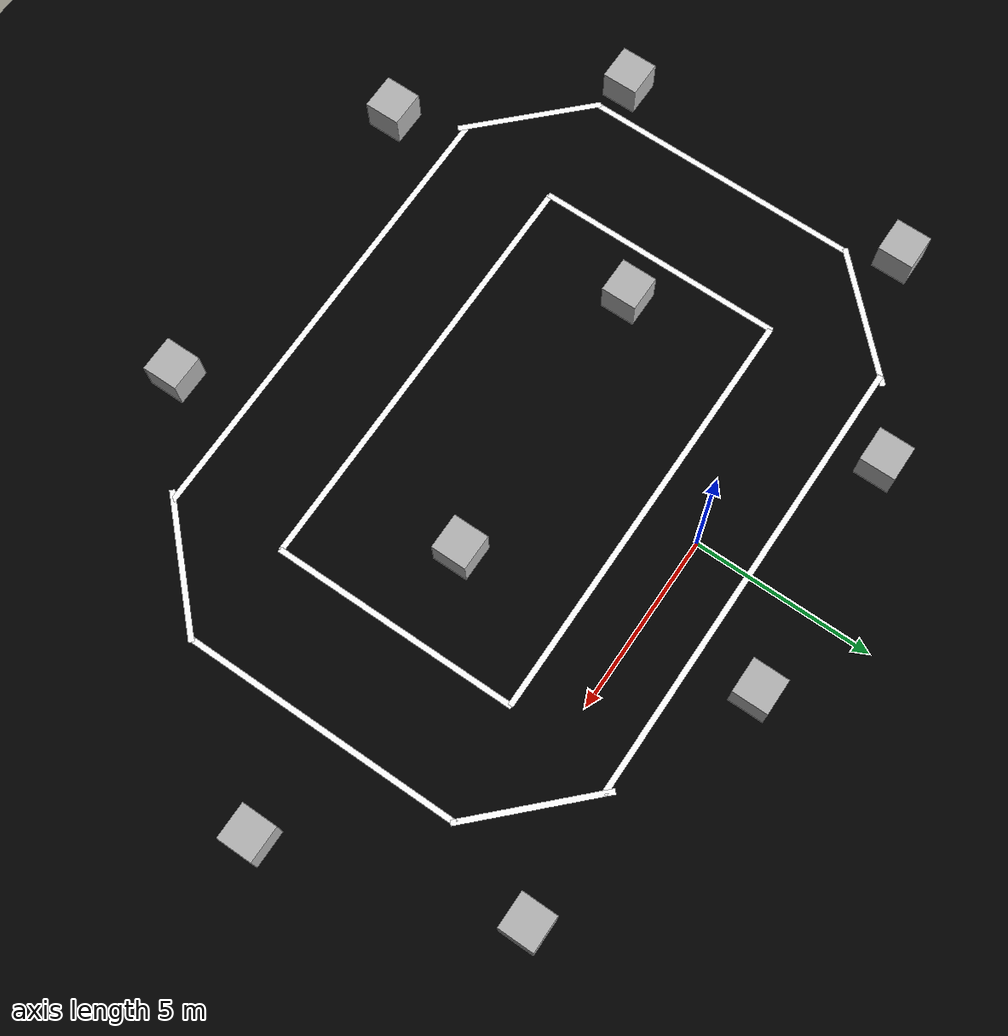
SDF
<sdf version="1.9">
 <world name="tinykarts_world">
  <physics name="1ms" type="ignored">
   <max_step_size>0.001</max_step_size>
   <real_time_factor>1.0</real_time_factor>
   <real_time_update_rate>1000</real_time_update_rate>
  </physics>
  <plugin name="ignition::gazebo::systems::Physics" filename="ignition-gazebo-physics-system"/>
  <plugin name="ignition::gazebo::systems::Sensors" filename="ignition-gazebo-sensors-system">
   <render_engine>ogre2</render_engine>
  </plugin>
  <plugin name="ignition::gazebo::systems::UserCommands" filename="ignition-gazebo-user-commands-system"/>
  <plugin name="ignition::gazebo::systems::SceneBroadcaster" filename="ignition-gazebo-scene-broadcaster-system"/>
  <plugin name="ignition::gazebo::systems::Contact" filename="ignition-gazebo-contact-system"/>
  <plugin name="ignition::gazebo::systems::Imu" filename="libignition-gazebo-imu-system.so"/>
  <gravity>0 0 -9.8</gravity>
  <magnetic_field>5.5645e-6 22.8758e-6 -42.3884e-6</magnetic_field>
  <atmosphere type="adiabatic"/>
  <scene><ambient>0.4 0.4 0.4 1.0</ambient><background>.7 .7 .7 1</background><shadows>true</shadows></scene>
  <model name="ground_plane">
   <static>1</static>
   <link name="link">
    <collision name="collision">
     <geometry><plane><normal>0 0 1</normal><size>100 100</size></plane></geometry>
    </collision>
    <visual name="visual">
     <geometry><plane><normal>0 0 1</normal><size>100 100</size></plane></geometry>
     <material>
      <ambient>0.8 0.8 0.8 1</ambient>
      <diffuse>0 0 0 1</diffuse>
      <specular>0.8 0.8 0.8 1</specular>
     </material>
    </visual>
    <inertial>
     <mass>1</mass>
     <inertia><ixx>1</ixx><ixy>0</ixy><ixz>0</ixz><iyy>1</iyy><iyz>0</iyz><izz>1</izz></inertia>
    </inertial>
   </link>
  </model>
  <model name="white_line_l1">
   <static>1</static>
   <link name="link_ground">
    <pose>0 1.524 0.01 0 -0 1.5708</pose>
    <visual name="visual_ground">
     <cast_shadows>false</cast_shadows>
     <geometry><plane><normal>0 0 1</normal><size>0.1524 13</size></plane></geometry>
     <material>
      <ambient>1.0 1.0 1.0 1.0</ambient>
      <diffuse>1.0 1.0 1.0 1.0</diffuse>
      <specular>1.0 1.0 1.0 1.0</specular>
      <emissive>1.0 1.0 1.0 1.0</emissive>
     </material>
    </visual>
    <inertial>
     <mass>1</mass>
     <inertia><ixx>1</ixx><ixy>0</ixy><ixz>0</ixz><iyy>1</iyy><iyz>0</iyz><izz>1</izz></inertia>
    </inertial>
   </link>
  </model>
  <model name="white_line_r1">
   <static>1</static>
   <link name="link_ground">
    <pose>0 -1.524 0.01 0 -0 1.5708</pose>
    <visual name="visual_ground">
     <cast_shadows>false</cast_shadows>
     <geometry><plane><normal>0 0 1</normal><size>0.1524 12</size></plane></geometry>
     <material>
      <ambient>1.0 1.0 1.0 1.0</ambient>
      <diffuse>1.0 1.0 1.0 1.0</diffuse>
      <specular>1.0 1.0 1.0 1.0</specular>
      <emissive>1.0 1.0 1.0 1.0</emissive>
     </material>
    </visual>
    <inertial>
     <mass>1</mass>
     <inertia><ixx>1</ixx><ixy>0</ixy><ixz>0</ixz><iyy>1</iyy><iyz>0</iyz><izz>1</izz></inertia>
    </inertial>
   </link>
  </model>
  <model name="white_line_r2">
   <static>1</static>
   <link name="link_ground">
    <pose>0 -11.524 0.01 0 -0 1.5708</pose>
    <visual name="visual_ground">
     <cast_shadows>false</cast_shadows>
     <geometry><plane><normal>0 0 1</normal><size>0.1524 13</size></plane></geometry>
     <material>
      <ambient>1.0 1.0 1.0 1.0</ambient>
      <diffuse>1.0 1.0 1.0 1.0</diffuse>
      <specular>1.0 1.0 1.0 1.0</specular>
      <emissive>1.0 1.0 1.0 1.0</emissive>
     </material>
    </visual>
    <inertial>
     <mass>1</mass>
     <inertia><ixx>1</ixx><ixy>0</ixy><ixz>0</ixz><iyy>1</iyy><iyz>0</iyz><izz>1</izz></inertia>
    </inertial>
   </link>
  </model>
  <model name="white_line_l2">
   <static>1</static>
   <link name="link_ground">
    <pose>0 -8.476 0.01 0 -0 1.5708</pose>
    <visual name="visual_ground">
     <cast_shadows>false</cast_shadows>
     <geometry><plane><normal>0 0 1</normal><size>0.1524 12</size></plane></geometry>
     <material>
      <ambient>1.0 1.0 1.0 1.0</ambient>
      <diffuse>1.0 1.0 1.0 1.0</diffuse>
      <specular>1.0 1.0 1.0 1.0</specular>
      <emissive>1.0 1.0 1.0 1.0</emissive>
     </material>
    </visual>
    <inertial>
     <mass>1</mass>
     <inertia><ixx>1</ixx><ixy>0</ixy><ixz>0</ixz><iyy>1</iyy><iyz>0</iyz><izz>1</izz></inertia>
    </inertial>
   </link>
  </model>
  <model name="white_line_t1">
   <static>1</static>
   <link name="link_ground">
    <pose>6 -5 0.01 0 -0 0</pose>
    <visual name="visual_ground">
     <cast_shadows>false</cast_shadows>
     <geometry><plane><normal>0 0 1</normal><size>0.1524 7.048</size></plane></geometry>
     <material>
      <ambient>1.0 1.0 1.0 1.0</ambient>
      <diffuse>1.0 1.0 1.0 1.0</diffuse>
      <specular>1.0 1.0 1.0 1.0</specular>
      <emissive>1.0 1.0 1.0 1.0</emissive>
     </material>
    </visual>
    <inertial>
     <mass>1</mass>
     <inertia><ixx>1</ixx><ixy>0</ixy><ixz>0</ixz><iyy>1</iyy><iyz>0</iyz><izz>1</izz></inertia>
    </inertial>
   </link>
  </model>
  <model name="white_line_t2">
   <static>1</static>
   <link name="link_ground">
    <pose>9.048 -5 0.01 0 -0 0</pose>
    <visual name="visual_ground">
     <cast_shadows>false</cast_shadows>
     <geometry><plane><normal>0 0 1</normal><size>0.1524 8</size></plane></geometry>
     <material>
      <ambient>1.0 1.0 1.0 1.0</ambient>
      <diffuse>1.0 1.0 1.0 1.0</diffuse>
      <specular>1.0 1.0 1.0 1.0</specular>
      <emissive>1.0 1.0 1.0 1.0</emissive>
     </material>
    </visual>
    <inertial>
     <mass>1</mass>
     <inertia><ixx>1</ixx><ixy>0</ixy><ixz>0</ixz><iyy>1</iyy><iyz>0</iyz><izz>1</izz></inertia>
    </inertial>
   </link>
  </model>
  <model name="white_line_t3">
   <static>1</static>
   <link name="link_ground">
    <pose>-6 -5 0.01 0 -0 0</pose>
    <visual name="visual_ground">
     <cast_shadows>false</cast_shadows>
     <geometry><plane><normal>0 0 1</normal><size>0.1524 7.048</size></plane></geometry>
     <material>
      <ambient>1.0 1.0 1.0 1.0</ambient>
      <diffuse>1.0 1.0 1.0 1.0</diffuse>
      <specular>1.0 1.0 1.0 1.0</specular>
      <emissive>1.0 1.0 1.0 1.0</emissive>
     </material>
    </visual>
    <inertial>
     <mass>1</mass>
     <inertia><ixx>1</ixx><ixy>0</ixy><ixz>0</ixz><iyy>1</iyy><iyz>0</iyz><izz>1</izz></inertia>
    </inertial>
   </link>
  </model>
  <model name="white_line_t4">
   <static>1</static>
   <link name="link_ground">
    <pose>-9.048 -5 0.01 0 -0 0</pose>
    <visual name="visual_ground">
     <cast_shadows>false</cast_shadows>
     <geometry><plane><normal>0 0 1</normal><size>0.1524 8</size></plane></geometry>
     <material>
      <ambient>1.0 1.0 1.0 1.0</ambient>
      <diffuse>1.0 1.0 1.0 1.0</diffuse>
      <specular>1.0 1.0 1.0 1.0</specular>
      <emissive>1.0 1.0 1.0 1.0</emissive>
     </material>
    </visual>
    <inertial>
     <mass>1</mass>
     <inertia><ixx>1</ixx><ixy>0</ixy><ixz>0</ixz><iyy>1</iyy><iyz>0</iyz><izz>1</izz></inertia>
    </inertial>
   </link>
  </model>
  <model name="white_line_d1">
   <static>1</static>
   <link name="link_ground">
    <pose>7.7 0.3 0.01 0 -0 0.785398</pose>
    <visual name="visual_ground">
     <cast_shadows>false</cast_shadows>
     <geometry><plane><normal>0 0 1</normal><size>0.1524 4</size></plane></geometry>
     <material>
      <ambient>1.0 1.0 1.0 1.0</ambient>
      <diffuse>1.0 1.0 1.0 1.0</diffuse>
      <specular>1.0 1.0 1.0 1.0</specular>
      <emissive>1.0 1.0 1.0 1.0</emissive>
     </material>
    </visual>
    <inertial>
     <mass>1</mass>
     <inertia><ixx>1</ixx><ixy>0</ixy><ixz>0</ixz><iyy>1</iyy><iyz>0</iyz><izz>1</izz></inertia>
    </inertial>
   </link>
  </model>
  <model name="white_line_d2">
   <static>1</static>
   <link name="link_ground">
    <pose>7.7 -10.3 0.01 0 0 -0.785398</pose>
    <visual name="visual_ground">
     <cast_shadows>false</cast_shadows>
     <geometry><plane><normal>0 0 1</normal><size>0.1524 4</size></plane></geometry>
     <material>
      <ambient>1.0 1.0 1.0 1.0</ambient>
      <diffuse>1.0 1.0 1.0 1.0</diffuse>
      <specular>1.0 1.0 1.0 1.0</specular>
      <emissive>1.0 1.0 1.0 1.0</emissive>
     </material>
    </visual>
    <inertial>
     <mass>1</mass>
     <inertia><ixx>1</ixx><ixy>0</ixy><ixz>0</ixz><iyy>1</iyy><iyz>0</iyz><izz>1</izz></inertia>
    </inertial>
   </link>
  </model>
  <model name="white_line_d3">
   <static>1</static>
   <link name="link_ground">
    <pose>-7.7 0.3 0.01 0 0 -0.785398</pose>
    <visual name="visual_ground">
     <cast_shadows>false</cast_shadows>
     <geometry><plane><normal>0 0 1</normal><size>0.1524 4</size></plane></geometry>
     <material>
      <ambient>1.0 1.0 1.0 1.0</ambient>
      <diffuse>1.0 1.0 1.0 1.0</diffuse>
      <specular>1.0 1.0 1.0 1.0</specular>
      <emissive>1.0 1.0 1.0 1.0</emissive>
     </material>
    </visual>
    <inertial>
     <mass>1</mass>
     <inertia><ixx>1</ixx><ixy>0</ixy><ixz>0</ixz><iyy>1</iyy><iyz>0</iyz><izz>1</izz></inertia>
    </inertial>
   </link>
  </model>
  <model name="white_line_d4">
   <static>1</static>
   <link name="link_ground">
    <pose>-7.7 -10.3 0.01 0 -0 0.785398</pose>
    <visual name="visual_ground">
     <cast_shadows>false</cast_shadows>
     <geometry><plane><normal>0 0 1</normal><size>0.1524 4</size></plane></geometry>
     <material>
      <ambient>1.0 1.0 1.0 1.0</ambient>
      <diffuse>1.0 1.0 1.0 1.0</diffuse>
      <specular>1.0 1.0 1.0 1.0</specular>
      <emissive>1.0 1.0 1.0 1.0</emissive>
     </material>
    </visual>
    <inertial>
     <mass>1</mass>
     <inertia><ixx>1</ixx><ixy>0</ixy><ixz>0</ixz><iyy>1</iyy><iyz>0</iyz><izz>1</izz></inertia>
    </inertial>
   </link>
  </model>
  <model name="box">
   <pose>3.52121 -4.71769 0.5 0 -0 -0</pose>
   <link name="box_link">
    <inertial>
     <inertia><ixx>0.16666</ixx><ixy>0</ixy><ixz>0</ixz><iyy>0.16666</iyy><iyz>0</iyz><izz>0.16666</izz></inertia>
     <mass>1</mass>
    </inertial>
    <collision name="box_collision"><geometry><box><size>1 1 1</size></box></geometry></collision>
    <visual name="box_visual">
     <geometry><box><size>1 1 1</size></box></geometry>
     <material>
      <ambient>0.3 0.3 0.3 1</ambient>
      <diffuse>0.7 0.7 0.7 1</diffuse>
      <specular>1 1 1 1</specular>
     </material>
    </visual>
   </link>
   <static>0</static>
  </model>
  <model name="box_0">
   <pose>12.0049 -4.76662 0.5 0 -0 -0</pose>
   <link name="box_link">
    <inertial>
     <inertia><ixx>0.16666</ixx><ixy>0</ixy><ixz>0</ixz><iyy>0.16666</iyy><iyz>0</iyz><izz>0.16666</izz></inertia>
     <mass>1</mass>
    </inertial>
    <collision name="box_collision"><geometry><box><size>1 1 1</size></box></geometry></collision>
    <visual name="box_visual">
     <geometry><box><size>1 1 1</size></box></geometry>
     <material>
      <ambient>0.3 0.3 0.3 1</ambient>
      <diffuse>0.7 0.7 0.7 1</diffuse>
      <specular>1 1 1 1</specular>
     </material>
    </visual>
   </link>
   <static>0</static>
  </model>
  <model name="box_1">
   <pose>2.40836 3.23497 0.5 0 -0 -0</pose>
   <link name="box_link">
    <inertial>
     <inertia><ixx>0.16666</ixx><ixy>0</ixy><ixz>0</ixz><iyy>0.16666</iyy><iyz>0</iyz><izz>0.16666</izz></inertia>
     <mass>1</mass>
    </inertial>
    <collision name="box_collision"><geometry><box><size>1 1 1</size></box></geometry></collision>
    <visual name="box_visual">
     <geometry><box><size>1 1 1</size></box></geometry>
     <material>
      <ambient>0.3 0.3 0.3 1</ambient>
      <diffuse>0.7 0.7 0.7 1</diffuse>
      <specular>1 1 1 1</specular>
     </material>
    </visual>
   </link>
   <static>0</static>
  </model>
  <model name="box_2">
   <pose>3.78202 -13.4626 0.5 0 -0 -0</pose>
   <link name="box_link">
    <inertial>
     <inertia><ixx>0.16666</ixx><ixy>0</ixy><ixz>0</ixz><iyy>0.16666</iyy><iyz>0</iyz><izz>0.16666</izz></inertia>
     <mass>1</mass>
    </inertial>
    <collision name="box_collision"><geometry><box><size>1 1 1</size></box></geometry></collision>
    <visual name="box_visual">
     <geometry><box><size>1 1 1</size></box></geometry>
     <material>
      <ambient>0.3 0.3 0.3 1</ambient>
      <diffuse>0.7 0.7 0.7 1</diffuse>
      <specular>1 1 1 1</specular>
     </material>
    </visual>
   </link>
   <static>0</static>
  </model>
  <model name="box_3">
   <pose>9.99887 1.71717 0.5 0 -0 -0</pose>
   <link name="box_link">
    <inertial>
     <inertia><ixx>0.16666</ixx><ixy>0</ixy><ixz>0</ixz><iyy>0.16666</iyy><iyz>0</iyz><izz>0.16666</izz></inertia>
     <mass>1</mass>
    </inertial>
    <collision name="box_collision"><geometry><box><size>1 1 1</size></box></geometry></collision>
    <visual name="box_visual">
     <geometry><box><size>1 1 1</size></box></geometry>
     <material>
      <ambient>0.3 0.3 0.3 1</ambient>
      <diffuse>0.7 0.7 0.7 1</diffuse>
      <specular>1 1 1 1</specular>
     </material>
    </visual>
   </link>
   <static>0</static>
  </model>
  <model name="box_4">
   <pose>-4.3426 2.75864 0.5 0 -0 -0</pose>
   <link name="box_link">
    <inertial>
     <inertia><ixx>0.16666</ixx><ixy>0</ixy><ixz>0</ixz><iyy>0.16666</iyy><iyz>0</iyz><izz>0.16666</izz></inertia>
     <mass>1</mass>
    </inertial>
    <collision name="box_collision"><geometry><box><size>1 1 1</size></box></geometry></collision>
    <visual name="box_visual">
     <geometry><box><size>1 1 1</size></box></geometry>
     <material>
      <ambient>0.3 0.3 0.3 1</ambient>
      <diffuse>0.7 0.7 0.7 1</diffuse>
      <specular>1 1 1 1</specular>
     </material>
    </visual>
   </link>
   <static>0</static>
  </model>
  <model name="box_5">
   <pose>-4.59392 -5.08695 0.5 0 -0 -0</pose>
   <link name="box_link">
    <inertial>
     <inertia><ixx>0.16666</ixx><ixy>0</ixy><ixz>0</ixz><iyy>0.16666</iyy><iyz>0</iyz><izz>0.16666</izz></inertia>
     <mass>1</mass>
    </inertial>
    <collision name="box_collision"><geometry><box><size>1 1 1</size></box></geometry></collision>
    <visual name="box_visual">
     <geometry><box><size>1 1 1</size></box></geometry>
     <material>
      <ambient>0.3 0.3 0.3 1</ambient>
      <diffuse>0.7 0.7 0.7 1</diffuse>
      <specular>1 1 1 1</specular>
     </material>
    </visual>
   </link>
   <static>0</static>
  </model>
  <model name="box_6">
   <pose>-9.6029 0.201215 0.5 0 -0 -0</pose>
   <link name="box_link">
    <inertial>
     <inertia><ixx>0.16666</ixx><ixy>0</ixy><ixz>0</ixz><iyy>0.16666</iyy><iyz>0</iyz><izz>0.16666</izz></inertia>
     <mass>1</mass>
    </inertial>
    <collision name="box_collision"><geometry><box><size>1 1 1</size></box></geometry></collision>
    <visual name="box_visual">
     <geometry><box><size>1 1 1</size></box></geometry>
     <material>
      <ambient>0.3 0.3 0.3 1</ambient>
      <diffuse>0.7 0.7 0.7 1</diffuse>
      <specular>1 1 1 1</specular>
     </material>
    </visual>
   </link>
   <static>0</static>
  </model>
  <model name="box_7">
   <pose>-9.90638 -8.53825 0.5 0 -0 -0</pose>
   <link name="box_link">
    <inertial>
     <inertia><ixx>0.16666</ixx><ixy>0</ixy><ixz>0</ixz><iyy>0.16666</iyy><iyz>0</iyz><izz>0.16666</izz></inertia>
     <mass>1</mass>
    </inertial>
    <collision name="box_collision"><geometry><box><size>1 1 1</size></box></geometry></collision>
    <visual name="box_visual">
     <geometry><box><size>1 1 1</size></box></geometry>
     <material>
      <ambient>0.3 0.3 0.3 1</ambient>
      <diffuse>0.7 0.7 0.7 1</diffuse>
      <specular>1 1 1 1</specular>
     </material>
    </visual>
   </link>
   <static>0</static>
  </model>
  <model name="box_8">
   <pose>-5.55562 -13.2924 0.5 0 -0 -0</pose>
   <link name="box_link">
    <inertial>
     <inertia><ixx>0.16666</ixx><ixy>0</ixy><ixz>0</ixz><iyy>0.16666</iyy><iyz>0</iyz><izz>0.16666</izz></inertia>
     <mass>1</mass>
    </inertial>
    <collision name="box_collision"><geometry><box><size>1 1 1</size></box></geometry></collision>
    <visual name="box_visual">
     <geometry><box><size>1 1 1</size></box></geometry>
     <material>
      <ambient>0.3 0.3 0.3 1</ambient>
      <diffuse>0.7 0.7 0.7 1</diffuse>
      <specular>1 1 1 1</specular>
     </material>
    </visual>
   </link>
   <static>0</static>
  </model>
  <light name="sun" type="directional">
   <pose>0 0 10 0 -0 0</pose>
   <intensity>1</intensity>
   <direction>-0.5 0.1 -0.9</direction>
   <diffuse>0.8 0.8 0.8 1</diffuse>
   <specular>0.2 0.2 0.2 1</specular>
   <attenuation>
    <range>1000</range>
    <linear>0.01</linear>
    <constant>0.9</constant>
    <quadratic>0.001</quadratic>
   </attenuation>
   <spot><inner_angle>0</inner_angle><outer_angle>0</outer_angle><falloff>0</falloff></spot>
  </light>
 </world>
</sdf>
